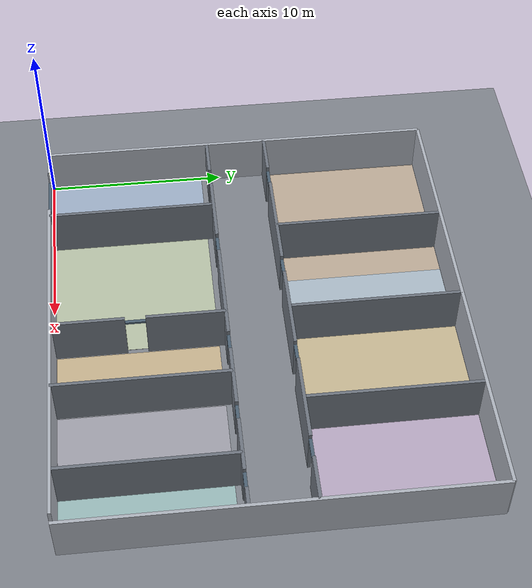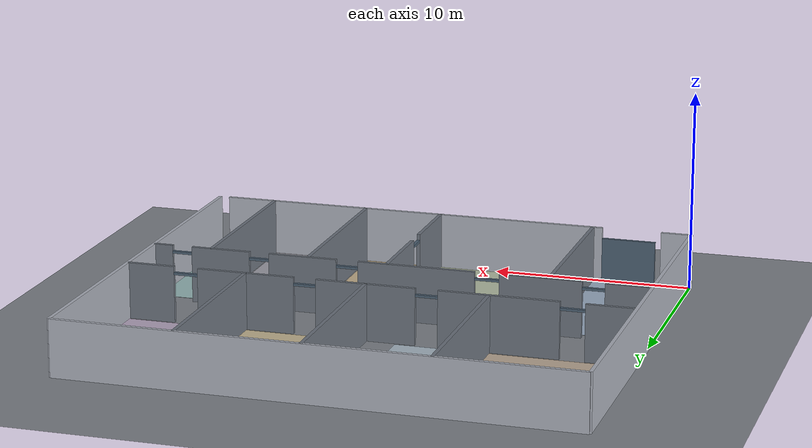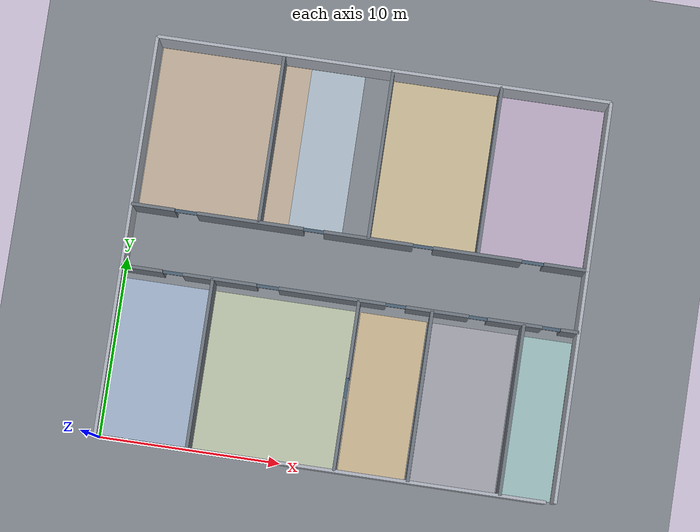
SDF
<sdf version="1.7">
 <world name="office_building_v1">
  <gravity>0 0 -9.8</gravity>
  <magnetic_field>6e-06 2.3e-05 -4.2e-05</magnetic_field>
  <physics type="ode">
   <max_step_size>0.001</max_step_size>
   <real_time_factor>1</real_time_factor>
   <real_time_update_rate>1000</real_time_update_rate>
  </physics>
  <scene>
   <ambient>0.45 0.45 0.45 1</ambient>
   <background>0.72 0.75 0.80 1</background>
   <shadows>1</shadows>
  </scene>
  <model name="ground_plane">
   <static>true</static>
   <link name="link">
    <collision name="collision">
     <geometry><plane><normal>0 0 1</normal><size>100 100</size></plane></geometry>
    </collision>
    <visual name="visual">
     <geometry><plane><normal>0 0 1</normal><size>100 100</size></plane></geometry>
     <material>
      <ambient>0.500 0.520 0.550 1.000</ambient>
      <diffuse>0.500 0.520 0.550 1.000</diffuse>
      <specular>0.15 0.15 0.15 1</specular>
     </material>
    </visual>
   </link>
  </model>
  <light name="sun" type="directional">
   <pose>12.500 11.000 25.000 0 0 0.000000</pose>
   <diffuse>0.85 0.85 0.85 1</diffuse>
   <specular>0.20 0.20 0.20 1</specular>
   <direction>-0.35 0.20 -0.90</direction>
   <attenuation>
    <range>80</range>
    <constant>0.8</constant>
    <linear>0.01</linear>
    <quadratic>0.001</quadratic>
   </attenuation>
  </light>
  <model name="office_building_structure">
   <static>true</static>
   <link name="floor_lobby">
    <pose>2.500 4.500 0.006 0 0 0.000000</pose>
    <visual name="floor_lobby_visual">
     <geometry><box><size>4.800 8.800 0.012</size></box></geometry>
     <material>
      <ambient>0.620 0.690 0.780 1.000</ambient>
      <diffuse>0.620 0.690 0.780 1.000</diffuse>
      <specular>0.15 0.15 0.15 1</specular>
     </material>
    </visual>
   </link>
   <link name="floor_open_office">
    <pose>9.000 4.500 0.006 0 0 0.000000</pose>
    <visual name="floor_open_office_visual">
     <geometry><box><size>7.800 8.800 0.012</size></box></geometry>
     <material>
      <ambient>0.720 0.760 0.660 1.000</ambient>
      <diffuse>0.720 0.760 0.660 1.000</diffuse>
      <specular>0.15 0.15 0.15 1</specular>
     </material>
    </visual>
   </link>
   <link name="floor_printer">
    <pose>15.000 4.500 0.006 0 0 0.000000</pose>
    <visual name="floor_printer_visual">
     <geometry><box><size>3.700 8.800 0.012</size></box></geometry>
     <material>
      <ambient>0.780 0.700 0.560 1.000</ambient>
      <diffuse>0.780 0.700 0.560 1.000</diffuse>
      <specular>0.15 0.15 0.15 1</specular>
     </material>
    </visual>
   </link>
   <link name="floor_storage">
    <pose>19.500 4.500 0.006 0 0 0.000000</pose>
    <visual name="floor_storage_visual">
     <geometry><box><size>4.700 8.800 0.012</size></box></geometry>
     <material>
      <ambient>0.630 0.630 0.670 1.000</ambient>
      <diffuse>0.630 0.630 0.670 1.000</diffuse>
      <specular>0.15 0.15 0.15 1</specular>
     </material>
    </visual>
   </link>
   <link name="floor_lounge">
    <pose>23.500 4.500 0.006 0 0 0.000000</pose>
    <visual name="floor_lounge_visual">
     <geometry><box><size>2.800 8.800 0.012</size></box></geometry>
     <material>
      <ambient>0.600 0.730 0.730 1.000</ambient>
      <diffuse>0.600 0.730 0.730 1.000</diffuse>
      <specular>0.15 0.15 0.15 1</specular>
     </material>
    </visual>
   </link>
   <link name="floor_conference">
    <pose>4.500 17.400 0.006 0 0 0.000000</pose>
    <visual name="floor_conference_visual">
     <geometry><box><size>8.700 9.000 0.012</size></box></geometry>
     <material>
      <ambient>0.740 0.670 0.590 1.000</ambient>
      <diffuse>0.740 0.670 0.590 1.000</diffuse>
      <specular>0.15 0.15 0.15 1</specular>
     </material>
    </visual>
   </link>
   <link name="floor_manager">
    <pose>10.000 17.400 0.006 0 0 0.000000</pose>
    <visual name="floor_manager_visual">
     <geometry><box><size>3.000 9.000 0.012</size></box></geometry>
     <material>
      <ambient>0.670 0.730 0.780 1.000</ambient>
      <diffuse>0.670 0.730 0.780 1.000</diffuse>
      <specular>0.15 0.15 0.15 1</specular>
     </material>
    </visual>
   </link>
   <link name="floor_kitchen">
    <pose>16.000 17.400 0.006 0 0 0.000000</pose>
    <visual name="floor_kitchen_visual">
     <geometry><box><size>5.800 9.000 0.012</size></box></geometry>
     <material>
      <ambient>0.780 0.720 0.580 1.000</ambient>
      <diffuse>0.780 0.720 0.580 1.000</diffuse>
      <specular>0.15 0.15 0.15 1</specular>
     </material>
    </visual>
   </link>
   <link name="floor_target_room">
    <pose>22.000 17.400 0.006 0 0 0.000000</pose>
    <visual name="floor_target_room_visual">
     <geometry><box><size>5.800 9.000 0.012</size></box></geometry>
     <material>
      <ambient>0.720 0.660 0.760 1.000</ambient>
      <diffuse>0.720 0.660 0.760 1.000</diffuse>
      <specular>0.15 0.15 0.15 1</specular>
     </material>
    </visual>
   </link>
   <link name="outer_west">
    <pose>0.000 11.000 1.400 0 0 0.000000</pose>
    <collision name="outer_west_collision">
     <geometry><box><size>0.180 22.000 2.800</size></box></geometry>
    </collision>
    <visual name="outer_west_visual">
     <geometry><box><size>0.180 22.000 2.800</size></box></geometry>
     <material>
      <ambient>0.680 0.700 0.740 1.000</ambient>
      <diffuse>0.680 0.700 0.740 1.000</diffuse>
      <specular>0.15 0.15 0.15 1</specular>
     </material>
    </visual>
   </link>
   <link name="outer_east">
    <pose>25.000 11.000 1.400 0 0 0.000000</pose>
    <collision name="outer_east_collision">
     <geometry><box><size>0.180 22.000 2.800</size></box></geometry>
    </collision>
    <visual name="outer_east_visual">
     <geometry><box><size>0.180 22.000 2.800</size></box></geometry>
     <material>
      <ambient>0.680 0.700 0.740 1.000</ambient>
      <diffuse>0.680 0.700 0.740 1.000</diffuse>
      <specular>0.15 0.15 0.15 1</specular>
     </material>
    </visual>
   </link>
   <link name="outer_north">
    <pose>12.500 22.000 1.400 0 0 0.000000</pose>
    <collision name="outer_north_collision">
     <geometry><box><size>25.000 0.180 2.800</size></box></geometry>
    </collision>
    <visual name="outer_north_visual">
     <geometry><box><size>25.000 0.180 2.800</size></box></geometry>
     <material>
      <ambient>0.680 0.700 0.740 1.000</ambient>
      <diffuse>0.680 0.700 0.740 1.000</diffuse>
      <specular>0.15 0.15 0.15 1</specular>
     </material>
    </visual>
   </link>
   <link name="outer_south_west">
    <pose>0.750 0.000 1.400 0 0 0.000000</pose>
    <collision name="outer_south_west_collision">
     <geometry><box><size>1.500 0.180 2.800</size></box></geometry>
    </collision>
    <visual name="outer_south_west_visual">
     <geometry><box><size>1.500 0.180 2.800</size></box></geometry>
     <material>
      <ambient>0.680 0.700 0.740 1.000</ambient>
      <diffuse>0.680 0.700 0.740 1.000</diffuse>
      <specular>0.15 0.15 0.15 1</specular>
     </material>
    </visual>
   </link>
   <link name="outer_south_east">
    <pose>14.500 0.000 1.400 0 0 0.000000</pose>
    <collision name="outer_south_east_collision">
     <geometry><box><size>20.000 0.180 2.800</size></box></geometry>
    </collision>
    <visual name="outer_south_east_visual">
     <geometry><box><size>20.000 0.180 2.800</size></box></geometry>
     <material>
      <ambient>0.680 0.700 0.740 1.000</ambient>
      <diffuse>0.680 0.700 0.740 1.000</diffuse>
      <specular>0.15 0.15 0.15 1</specular>
     </material>
    </visual>
   </link>
   <link name="south_entry_closed_door">
    <pose>3.400 0.000 1.125 0 0 0.000000</pose>
    <collision name="south_entry_closed_door_collision">
     <geometry><box><size>3.200 0.180 2.250</size></box></geometry>
    </collision>
    <visual name="south_entry_closed_door_visual">
     <geometry><box><size>3.200 0.180 2.250</size></box></geometry>
     <material>
      <ambient>0.300 0.380 0.450 1.000</ambient>
      <diffuse>0.300 0.380 0.450 1.000</diffuse>
      <specular>0.15 0.15 0.15 1</specular>
     </material>
    </visual>
   </link>
   <link name="lower_corridor_wall_segment_0">
    <pose>1.125 9.300 1.400 0 0 0.000000</pose>
    <collision name="lower_corridor_wall_segment_0_collision">
     <geometry><box><size>2.250 0.180 2.800</size></box></geometry>
    </collision>
    <visual name="lower_corridor_wall_segment_0_visual">
     <geometry><box><size>2.250 0.180 2.800</size></box></geometry>
     <material>
      <ambient>0.430 0.460 0.500 1.000</ambient>
      <diffuse>0.430 0.460 0.500 1.000</diffuse>
      <specular>0.15 0.15 0.15 1</specular>
     </material>
    </visual>
   </link>
   <link name="lower_corridor_wall_segment_1">
    <pose>5.375 9.300 1.400 0 0 0.000000</pose>
    <collision name="lower_corridor_wall_segment_1_collision">
     <geometry><box><size>4.050 0.180 2.800</size></box></geometry>
    </collision>
    <visual name="lower_corridor_wall_segment_1_visual">
     <geometry><box><size>4.050 0.180 2.800</size></box></geometry>
     <material>
      <ambient>0.430 0.460 0.500 1.000</ambient>
      <diffuse>0.430 0.460 0.500 1.000</diffuse>
      <specular>0.15 0.15 0.15 1</specular>
     </material>
    </visual>
   </link>
   <link name="lower_corridor_wall_segment_2">
    <pose>11.525 9.300 1.400 0 0 0.000000</pose>
    <collision name="lower_corridor_wall_segment_2_collision">
     <geometry><box><size>5.850 0.180 2.800</size></box></geometry>
    </collision>
    <visual name="lower_corridor_wall_segment_2_visual">
     <geometry><box><size>5.850 0.180 2.800</size></box></geometry>
     <material>
      <ambient>0.430 0.460 0.500 1.000</ambient>
      <diffuse>0.430 0.460 0.500 1.000</diffuse>
      <specular>0.15 0.15 0.15 1</specular>
     </material>
    </visual>
   </link>
   <link name="lower_corridor_wall_segment_3">
    <pose>17.275 9.300 1.400 0 0 0.000000</pose>
    <collision name="lower_corridor_wall_segment_3_collision">
     <geometry><box><size>3.450 0.180 2.800</size></box></geometry>
    </collision>
    <visual name="lower_corridor_wall_segment_3_visual">
     <geometry><box><size>3.450 0.180 2.800</size></box></geometry>
     <material>
      <ambient>0.430 0.460 0.500 1.000</ambient>
      <diffuse>0.430 0.460 0.500 1.000</diffuse>
      <specular>0.15 0.15 0.15 1</specular>
     </material>
    </visual>
   </link>
   <link name="lower_corridor_wall_segment_4">
    <pose>21.500 9.300 1.400 0 0 0.000000</pose>
    <collision name="lower_corridor_wall_segment_4_collision">
     <geometry><box><size>3.000 0.180 2.800</size></box></geometry>
    </collision>
    <visual name="lower_corridor_wall_segment_4_visual">
     <geometry><box><size>3.000 0.180 2.800</size></box></geometry>
     <material>
      <ambient>0.430 0.460 0.500 1.000</ambient>
      <diffuse>0.430 0.460 0.500 1.000</diffuse>
      <specular>0.15 0.15 0.15 1</specular>
     </material>
    </visual>
   </link>
   <link name="lower_corridor_wall_segment_final">
    <pose>24.500 9.300 1.400 0 0 0.000000</pose>
    <collision name="lower_corridor_wall_segment_final_collision">
     <geometry><box><size>1.000 0.180 2.800</size></box></geometry>
    </collision>
    <visual name="lower_corridor_wall_segment_final_visual">
     <geometry><box><size>1.000 0.180 2.800</size></box></geometry>
     <material>
      <ambient>0.430 0.460 0.500 1.000</ambient>
      <diffuse>0.430 0.460 0.500 1.000</diffuse>
      <specular>0.15 0.15 0.15 1</specular>
     </material>
    </visual>
   </link>
   <link name="upper_corridor_wall_segment_0">
    <pose>1.200 12.700 1.400 0 0 0.000000</pose>
    <collision name="upper_corridor_wall_segment_0_collision">
     <geometry><box><size>2.400 0.180 2.800</size></box></geometry>
    </collision>
    <visual name="upper_corridor_wall_segment_0_visual">
     <geometry><box><size>2.400 0.180 2.800</size></box></geometry>
     <material>
      <ambient>0.430 0.460 0.500 1.000</ambient>
      <diffuse>0.430 0.460 0.500 1.000</diffuse>
      <specular>0.15 0.15 0.15 1</specular>
     </material>
    </visual>
   </link>
   <link name="upper_corridor_wall_segment_1">
    <pose>6.525 12.700 1.400 0 0 0.000000</pose>
    <collision name="upper_corridor_wall_segment_1_collision">
     <geometry><box><size>5.850 0.180 2.800</size></box></geometry>
    </collision>
    <visual name="upper_corridor_wall_segment_1_visual">
     <geometry><box><size>5.850 0.180 2.800</size></box></geometry>
     <material>
      <ambient>0.430 0.460 0.500 1.000</ambient>
      <diffuse>0.430 0.460 0.500 1.000</diffuse>
      <specular>0.15 0.15 0.15 1</specular>
     </material>
    </visual>
   </link>
   <link name="upper_corridor_wall_segment_2">
    <pose>13.000 12.700 1.400 0 0 0.000000</pose>
    <collision name="upper_corridor_wall_segment_2_collision">
     <geometry><box><size>4.900 0.180 2.800</size></box></geometry>
    </collision>
    <visual name="upper_corridor_wall_segment_2_visual">
     <geometry><box><size>4.900 0.180 2.800</size></box></geometry>
     <material>
      <ambient>0.430 0.460 0.500 1.000</ambient>
      <diffuse>0.430 0.460 0.500 1.000</diffuse>
      <specular>0.15 0.15 0.15 1</specular>
     </material>
    </visual>
   </link>
   <link name="upper_corridor_wall_segment_3">
    <pose>18.975 12.700 1.400 0 0 0.000000</pose>
    <collision name="upper_corridor_wall_segment_3_collision">
     <geometry><box><size>4.850 0.180 2.800</size></box></geometry>
    </collision>
    <visual name="upper_corridor_wall_segment_3_visual">
     <geometry><box><size>4.850 0.180 2.800</size></box></geometry>
     <material>
      <ambient>0.430 0.460 0.500 1.000</ambient>
      <diffuse>0.430 0.460 0.500 1.000</diffuse>
      <specular>0.15 0.15 0.15 1</specular>
     </material>
    </visual>
   </link>
   <link name="upper_corridor_wall_segment_final">
    <pose>23.800 12.700 1.400 0 0 0.000000</pose>
    <collision name="upper_corridor_wall_segment_final_collision">
     <geometry><box><size>2.400 0.180 2.800</size></box></geometry>
    </collision>
    <visual name="upper_corridor_wall_segment_final_visual">
     <geometry><box><size>2.400 0.180 2.800</size></box></geometry>
     <material>
      <ambient>0.430 0.460 0.500 1.000</ambient>
      <diffuse>0.430 0.460 0.500 1.000</diffuse>
      <specular>0.15 0.15 0.15 1</specular>
     </material>
    </visual>
   </link>
   <link name="lobby_office_wall_segment_final">
    <pose>5.000 4.650 1.400 0 0 0.000000</pose>
    <collision name="lobby_office_wall_segment_final_collision">
     <geometry><box><size>0.180 9.300 2.800</size></box></geometry>
    </collision>
    <visual name="lobby_office_wall_segment_final_visual">
     <geometry><box><size>0.180 9.300 2.800</size></box></geometry>
     <material>
      <ambient>0.430 0.460 0.500 1.000</ambient>
      <diffuse>0.430 0.460 0.500 1.000</diffuse>
      <specular>0.15 0.15 0.15 1</specular>
     </material>
    </visual>
   </link>
   <link name="office_printer_wall_segment_0">
    <pose>13.000 1.975 1.400 0 0 0.000000</pose>
    <collision name="office_printer_wall_segment_0_collision">
     <geometry><box><size>0.180 3.950 2.800</size></box></geometry>
    </collision>
    <visual name="office_printer_wall_segment_0_visual">
     <geometry><box><size>0.180 3.950 2.800</size></box></geometry>
     <material>
      <ambient>0.430 0.460 0.500 1.000</ambient>
      <diffuse>0.430 0.460 0.500 1.000</diffuse>
      <specular>0.15 0.15 0.15 1</specular>
     </material>
    </visual>
   </link>
   <link name="office_printer_wall_segment_final">
    <pose>13.000 7.175 1.400 0 0 0.000000</pose>
    <collision name="office_printer_wall_segment_final_collision">
     <geometry><box><size>0.180 4.250 2.800</size></box></geometry>
    </collision>
    <visual name="office_printer_wall_segment_final_visual">
     <geometry><box><size>0.180 4.250 2.800</size></box></geometry>
     <material>
      <ambient>0.430 0.460 0.500 1.000</ambient>
      <diffuse>0.430 0.460 0.500 1.000</diffuse>
      <specular>0.15 0.15 0.15 1</specular>
     </material>
    </visual>
   </link>
   <link name="printer_storage_wall_segment_final">
    <pose>17.000 4.650 1.400 0 0 0.000000</pose>
    <collision name="printer_storage_wall_segment_final_collision">
     <geometry><box><size>0.180 9.300 2.800</size></box></geometry>
    </collision>
    <visual name="printer_storage_wall_segment_final_visual">
     <geometry><box><size>0.180 9.300 2.800</size></box></geometry>
     <material>
      <ambient>0.430 0.460 0.500 1.000</ambient>
      <diffuse>0.430 0.460 0.500 1.000</diffuse>
      <specular>0.15 0.15 0.15 1</specular>
     </material>
    </visual>
   </link>
   <link name="storage_lounge_wall_segment_final">
    <pose>22.000 4.650 1.400 0 0 0.000000</pose>
    <collision name="storage_lounge_wall_segment_final_collision">
     <geometry><box><size>0.180 9.300 2.800</size></box></geometry>
    </collision>
    <visual name="storage_lounge_wall_segment_final_visual">
     <geometry><box><size>0.180 9.300 2.800</size></box></geometry>
     <material>
      <ambient>0.430 0.460 0.500 1.000</ambient>
      <diffuse>0.430 0.460 0.500 1.000</diffuse>
      <specular>0.15 0.15 0.15 1</specular>
     </material>
    </visual>
   </link>
   <link name="conference_manager_wall_segment_final">
    <pose>7.000 17.350 1.400 0 0 0.000000</pose>
    <collision name="conference_manager_wall_segment_final_collision">
     <geometry><box><size>0.180 9.300 2.800</size></box></geometry>
    </collision>
    <visual name="conference_manager_wall_segment_final_visual">
     <geometry><box><size>0.180 9.300 2.800</size></box></geometry>
     <material>
      <ambient>0.430 0.460 0.500 1.000</ambient>
      <diffuse>0.430 0.460 0.500 1.000</diffuse>
      <specular>0.15 0.15 0.15 1</specular>
     </material>
    </visual>
   </link>
   <link name="manager_kitchen_wall_segment_final">
    <pose>13.000 17.350 1.400 0 0 0.000000</pose>
    <collision name="manager_kitchen_wall_segment_final_collision">
     <geometry><box><size>0.180 9.300 2.800</size></box></geometry>
    </collision>
    <visual name="manager_kitchen_wall_segment_final_visual">
     <geometry><box><size>0.180 9.300 2.800</size></box></geometry>
     <material>
      <ambient>0.430 0.460 0.500 1.000</ambient>
      <diffuse>0.430 0.460 0.500 1.000</diffuse>
      <specular>0.15 0.15 0.15 1</specular>
     </material>
    </visual>
   </link>
   <link name="kitchen_target_wall_segment_final">
    <pose>19.000 17.350 1.400 0 0 0.000000</pose>
    <collision name="kitchen_target_wall_segment_final_collision">
     <geometry><box><size>0.180 9.300 2.800</size></box></geometry>
    </collision>
    <visual name="kitchen_target_wall_segment_final_visual">
     <geometry><box><size>0.180 9.300 2.800</size></box></geometry>
     <material>
      <ambient>0.430 0.460 0.500 1.000</ambient>
      <diffuse>0.430 0.460 0.500 1.000</diffuse>
      <specular>0.15 0.15 0.15 1</specular>
     </material>
    </visual>
   </link>
   <link name="lobby_corridor_lintel">
    <pose>2.800 9.300 2.450 0 0 0.000000</pose>
    <visual name="lobby_corridor_lintel_visual">
     <geometry><box><size>1.100 0.180 0.120</size></box></geometry>
     <material>
      <ambient>0.300 0.380 0.450 1.000</ambient>
      <diffuse>0.300 0.380 0.450 1.000</diffuse>
      <specular>0.15 0.15 0.15 1</specular>
     </material>
    </visual>
   </link>
   <link name="open_office_corridor_lintel">
    <pose>8.000 9.300 2.450 0 0 0.000000</pose>
    <visual name="open_office_corridor_lintel_visual">
     <geometry><box><size>1.200 0.180 0.120</size></box></geometry>
     <material>
      <ambient>0.300 0.380 0.450 1.000</ambient>
      <diffuse>0.300 0.380 0.450 1.000</diffuse>
      <specular>0.15 0.15 0.15 1</specular>
     </material>
    </visual>
   </link>
   <link name="printer_corridor_lintel">
    <pose>15.000 9.300 2.450 0 0 0.000000</pose>
    <visual name="printer_corridor_lintel_visual">
     <geometry><box><size>1.100 0.180 0.120</size></box></geometry>
     <material>
      <ambient>0.300 0.380 0.450 1.000</ambient>
      <diffuse>0.300 0.380 0.450 1.000</diffuse>
      <specular>0.15 0.15 0.15 1</specular>
     </material>
    </visual>
   </link>
   <link name="storage_corridor_lintel">
    <pose>19.500 9.300 2.450 0 0 0.000000</pose>
    <visual name="storage_corridor_lintel_visual">
     <geometry><box><size>1.000 0.180 0.120</size></box></geometry>
     <material>
      <ambient>0.300 0.380 0.450 1.000</ambient>
      <diffuse>0.300 0.380 0.450 1.000</diffuse>
      <specular>0.15 0.15 0.15 1</specular>
     </material>
    </visual>
   </link>
   <link name="lounge_corridor_lintel">
    <pose>23.500 9.300 2.450 0 0 0.000000</pose>
    <visual name="lounge_corridor_lintel_visual">
     <geometry><box><size>1.000 0.180 0.120</size></box></geometry>
     <material>
      <ambient>0.300 0.380 0.450 1.000</ambient>
      <diffuse>0.300 0.380 0.450 1.000</diffuse>
      <specular>0.15 0.15 0.15 1</specular>
     </material>
    </visual>
   </link>
   <link name="conference_corridor_lintel">
    <pose>3.000 12.700 2.450 0 0 0.000000</pose>
    <visual name="conference_corridor_lintel_visual">
     <geometry><box><size>1.200 0.180 0.120</size></box></geometry>
     <material>
      <ambient>0.300 0.380 0.450 1.000</ambient>
      <diffuse>0.300 0.380 0.450 1.000</diffuse>
      <specular>0.15 0.15 0.15 1</specular>
     </material>
    </visual>
   </link>
   <link name="manager_corridor_lintel">
    <pose>10.000 12.700 2.450 0 0 0.000000</pose>
    <visual name="manager_corridor_lintel_visual">
     <geometry><box><size>1.100 0.180 0.120</size></box></geometry>
     <material>
      <ambient>0.300 0.380 0.450 1.000</ambient>
      <diffuse>0.300 0.380 0.450 1.000</diffuse>
      <specular>0.15 0.15 0.15 1</specular>
     </material>
    </visual>
   </link>
   <link name="kitchen_corridor_lintel">
    <pose>16.000 12.700 2.450 0 0 0.000000</pose>
    <visual name="kitchen_corridor_lintel_visual">
     <geometry><box><size>1.100 0.180 0.120</size></box></geometry>
     <material>
      <ambient>0.300 0.380 0.450 1.000</ambient>
      <diffuse>0.300 0.380 0.450 1.000</diffuse>
      <specular>0.15 0.15 0.15 1</specular>
     </material>
    </visual>
   </link>
   <link name="target_room_corridor_lintel">
    <pose>22.000 12.700 2.450 0 0 0.000000</pose>
    <visual name="target_room_corridor_lintel_visual">
     <geometry><box><size>1.200 0.180 0.120</size></box></geometry>
     <material>
      <ambient>0.300 0.380 0.450 1.000</ambient>
      <diffuse>0.300 0.380 0.450 1.000</diffuse>
      <specular>0.15 0.15 0.15 1</specular>
     </material>
    </visual>
   </link>
   <link name="office_printer_staff_door_lintel">
    <pose>13.000 4.500 2.450 0 0 0.000000</pose>
    <visual name="office_printer_staff_door_lintel_visual">
     <geometry><box><size>0.180 1.100 0.120</size></box></geometry>
     <material>
      <ambient>0.300 0.380 0.450 1.000</ambient>
      <diffuse>0.300 0.380 0.450 1.000</diffuse>
      <specular>0.15 0.15 0.15 1</specular>
     </material>
    </visual>
   </link>
  </model>
 </world>
</sdf>
